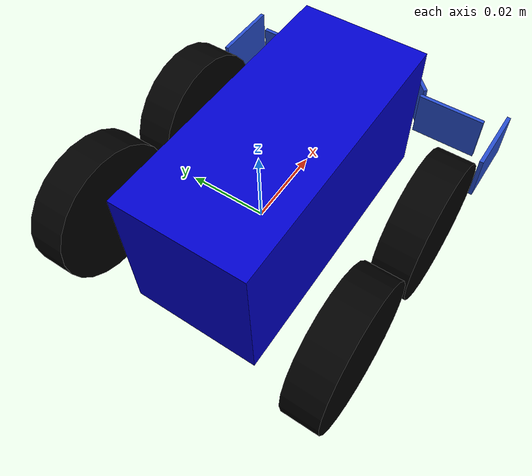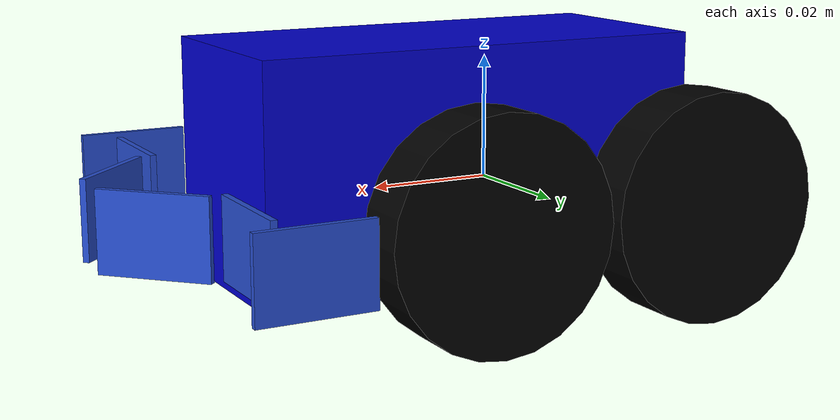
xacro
<?xml version="1.0"?>
<robot name="roscontrol" xmlns:xacro="http://ros.org/wiki/xacro">

  <xacro:include filename="$(find pacmouse_pkg)/urdf/laser_rangefinder.urdf.xacro"/>

  <xacro:property name="width" value="0.2" />
  <xacro:property name="leglen" value="0.6" />
  <xacro:property name="polelen" value="0.2" />
  <xacro:property name="bodylen" value="0.6" />
  <xacro:property name="baselen" value="0.4" />
  <xacro:property name="wheeldiam" value="0.07" />

  <xacro:property name="chassis_width" value=".0335" />
  <xacro:property name="chassis_length" value=".073572" />
  <xacro:property name="chassis_height" value=".037260" />
  <xacro:property name="chassis_vert_offset" value="0.005393" />
  <xacro:property name="chassis_forward_offset" value="0.008926" />

  <xacro:property name="wheel_radius" value="${.035535 / 2}" />
  <xacro:property name="wheel_width" value=".009144" />

  <xacro:property name="wheel_front_offset" value=".018382" />
  <xacro:property name="wheel_rear_offset" value="-.018382" />
  <xacro:property name="wheel_lateral_offset" value=".033498" />
  <xacro:property name="wheel_vert_offset" value="0" />

  <material name="blue">
    <color rgba="0 0 0.8 1"/>
  </material>

  <material name="black">
    <color rgba="0 0 0 1"/>
  </material>

  <material name="white">
    <color rgba="1 1 1 1"/>
  </material>

  <xacro:macro name="default_inertial" params="mass">
    <inertial>
      <mass value="${mass}" />
      <inertia ixx=".001" ixy="0.0" ixz="0.0" iyy=".001" iyz="0.0" izz=".001" />
    </inertial>
  </xacro:macro>

  <link name="base_link">
    <visual>
      <origin xyz="${chassis_forward_offset} 0 ${chassis_vert_offset}" rpy="0 0 0" />
      <geometry>
        <box size="${chassis_length} ${chassis_width} ${chassis_height}"/>
      </geometry>
      <material name="blue"/>
    </visual>
    <collision>
      <origin xyz="${chassis_forward_offset} 0 ${chassis_vert_offset}" rpy="0 0 0" />
      <geometry>
        <box size="${chassis_length} ${chassis_width} ${chassis_height}"/>
      </geometry>
    </collision>
    <xacro:default_inertial mass="10"/>
  </link>

  <xacro:macro name="wheel" params="prefix suffix x_offset y_offset">

    <link name="${prefix}_${suffix}_wheel">
      <visual>
        <origin xyz="0 0 0" rpy="${pi/2} 0 0" />
        <geometry>
          <cylinder radius="${wheel_radius}" length="${wheel_width}"/>
        </geometry>
        <material name="black"/>
      </visual>
      <collision>
        <origin xyz="0 0 0" rpy="${pi/2} 0 0" />
        <geometry>
          <cylinder radius="${wheel_radius}" length="${wheel_width}"/>
        </geometry>
      </collision>
      <xacro:default_inertial mass="1"/>
    </link>
    <joint name="${prefix}_${suffix}_wheel_joint" type="continuous">
      <axis xyz="0 1 0" rpy="0 0 0" />
      <parent link="base_link"/>
      <child link="${prefix}_${suffix}_wheel"/>
      <origin xyz="${x_offset} ${y_offset} ${wheel_vert_offset}" rpy="0 0 0"/>
    </joint>

    <!-- This block provides the simulator (Gazebo) with information on a few additional
    physical properties. See http://gazebosim.org/tutorials/?tut=ros_urdf for more-->
    <gazebo reference="${prefix}_${suffix}_wheel">
      <mu1 value="100"/>
      <mu2 value="50"/>
      <kp value="10000000.0" />
      <kd value="1.0" />
      <material>Gazebo/Grey</material>
    </gazebo>

    <!-- This block connects the wheel joint to an actuator (motor), which informs both
    simulation and visualization of the robot -->
    <transmission name="${prefix}_${suffix}_wheel_trans">
      <type>transmission_interface/SimpleTransmission</type>
      <actuator name="${prefix}_${suffix}_wheel_motor">
        <mechanicalReduction>1</mechanicalReduction>
      </actuator>
      <joint name="${prefix}_${suffix}_wheel_joint">
        <hardwareInterface>hardware_interface/VelocityJointInterface</hardwareInterface>
      </joint>
    </transmission>

  </xacro:macro>

  <xacro:wheel prefix="right" suffix="front" x_offset="${wheel_front_offset}" y_offset="${-wheel_lateral_offset}" />
  <xacro:wheel prefix="right" suffix="rear" x_offset="${wheel_rear_offset}" y_offset="${-wheel_lateral_offset}" />
  <xacro:wheel prefix="left" suffix="front" x_offset="${wheel_front_offset}" y_offset="${wheel_lateral_offset}" />
  <xacro:wheel prefix="left" suffix="rear" x_offset="${wheel_rear_offset}" y_offset="${wheel_lateral_offset}" />

  <xacro:laser_rangefinder xyz="0.047535 -0.038236 -0.000868"
                  rpy="0 0 ${-pi/2}"
                  parent="base_link"
                  name = "0">
  </xacro:laser_rangefinder>

  <xacro:laser_rangefinder xyz="0.051362 -0.024628 -0.000868"
                  rpy="0 0 0"
                  parent="base_link"
                  name = "1">
  </xacro:laser_rangefinder>

  <xacro:laser_rangefinder xyz="0.059890 -0.009768 -0.000868"
                  rpy="0 0 ${-pi/4}"
                  parent="base_link"
                  name = "2">
  </xacro:laser_rangefinder>

  <xacro:laser_rangefinder xyz="0.059890 0.009768 -0.000868"
                  rpy="0 0 ${pi/4}"
                  parent="base_link"
                  name = "3">
  </xacro:laser_rangefinder>

  <xacro:laser_rangefinder xyz="0.051362 0.024628 -0.000868"
                  rpy="0 0 0"
                  parent="base_link"
                  name = "4">
  </xacro:laser_rangefinder>

  <xacro:laser_rangefinder xyz="0.047535 0.038236 -0.000868"
                  rpy="0 0 ${pi/2}"
                  parent="base_link"
                  name = "5">
  </xacro:laser_rangefinder>

  <!-- Gazebo plugin for ROS Control -->
  <gazebo>
    <plugin name="gazebo_ros_control" filename="libgazebo_ros_control.so">
      <robotNamespace>/</robotNamespace>
    </plugin>
  </gazebo>

</robot>

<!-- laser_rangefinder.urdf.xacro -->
<robot xmlns:xacro="http://ros.org/wiki/xacro" name="hokuyo">

<xacro:macro name="laser_rangefinder" params="xyz rpy parent name">
    <joint name="laser_rangefinder_joint_${name}" type="fixed">
        <axis xyz="0 0 1" />
        <origin xyz="${xyz}" rpy="${rpy}"/>
        <parent link="${parent}"/>
        <child link="laser_rangefinder_link_${name}"/>
    </joint>

    <link name="laser_rangefinder_link_${name}">
        <collision>
            <origin xyz="0 0 0" rpy="0 0 0"/>
            <geometry>
              <box size="0.01 0.01778 0.0127" />
            </geometry>
        </collision>
        <visual>
            <origin xyz="0 0 0" rpy="0 0 0"/>
            <geometry>
                <box size="0.00102 0.01778 0.0127" />
            </geometry>
            <material name="iRobot/LightBlue"/>
        </visual>
        <inertial>
            <mass value="0" />
            <origin xyz="0 0 0" rpy="0 0 0"/>
            <inertia ixx="0" ixy="0" ixz="0" iyy="0" iyz="0" izz="0" />
        </inertial>
    </link>

    <gazebo reference="laser_rangefinder_link_${name}">
        <gravity>true</gravity>
        <sensor type="ray" name="head_laser_sensor_${name}">
            <pose>0 0 0 0 0 0</pose>
            <visualize>true</visualize>
            <update_rate>40</update_rate>
            <ray>
                <scan>
                    <horizontal>
                        <samples>2</samples>
                        <resolution>1</resolution>
                        <min_angle>-.00001</min_angle>
                        <max_angle>.00001</max_angle>
                    </horizontal>
                </scan>
                <range>
                    <min>.01</min>
                    <max>2</max>
                    <resolution>0.025</resolution>
                </range>
                <noise>
                    <type>gaussian</type>
                    <mean>0.0</mean>
                    <stddev>.01</stddev>
                </noise>
            </ray>
            <plugin name="gazebo_ros_head_laser_controller" filename="libgazebo_ros_laser.so">
              <robotNamespace>/</robotNamespace>
                <topicName>laser_scan_${name}</topicName>
                <frameName>laser_rangefinder_link_${name}</frameName>
            </plugin>
        </sensor>
    </gazebo>

</xacro:macro>

</robot>
